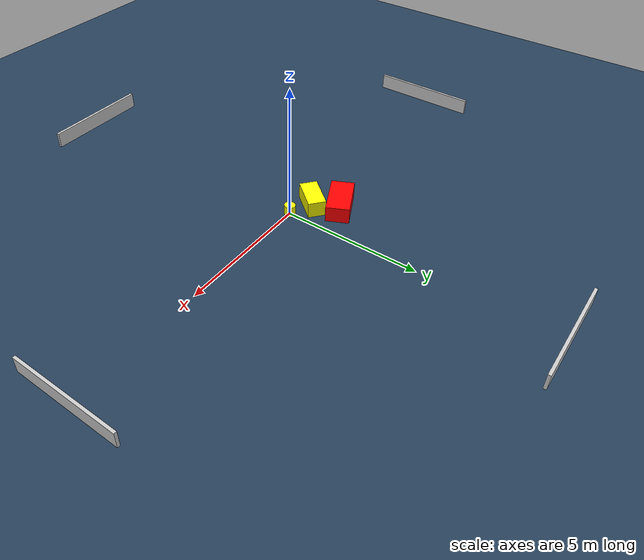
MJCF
<?xml version="1.0" ?>
<mujoco model="generated_environment">
  <option timestep="0.01" integrator="RK4" cone="elliptic"/>
  <default>
    <geom density="1"/>
  </default>
  <asset>
    <texture builtin="gradient" height="3072" name="skybox" rgb1="0.3 0.5 0.7" rgb2="0 0 0" type="skybox" width="512"/>
    <texture builtin="checker" height="300" name="groundplane" rgb1="0.2 0.3 0.4" rgb2="0.1 0.2 0.3" type="2d" width="300"/>
    <material name="groundplane" reflectance="0.2" texrepeat="5 5" texture="groundplane"/>
  </asset>
  <worldbody>
    <light dir="0 0 -1" directional="true" pos="0 0 1.5"/>
    <geom condim="3" friction="0.5 0.005 0.001" material="groundplane" name="floor" pos="0 0 0" size="0 0 0.05" type="plane"/>
    <body name="walls">
      <geom name="wall_1" condim="4" pos="-10.0 0.0 0.3" rgba="0.800000011920929 0.800000011920929 0.800000011920929 1.0" size="0.05 2.0 0.3" type="box"/>
      <geom name="wall_2" condim="4" pos="10.0 0.0 0.3" rgba="0.800000011920929 0.800000011920929 0.800000011920929 1.0" size="0.05 2.0 0.3" type="box"/>
      <geom name="wall_3" condim="4" pos="0.0 -10.0 0.3" rgba="0.800000011920929 0.800000011920929 0.800000011920929 1.0" size="2.0 0.05 0.3" type="box"/>
      <geom name="wall_4" condim="4" pos="0.0 10.0 0.3" rgba="0.800000011920929 0.800000011920929 0.800000011920929 1.0" size="2.0 0.05 0.3" type="box"/>
    </body>
    <body name="robot">
      <joint name="joint_x" type="slide" pos="0 0 0" axis="1 0 0"/>
      <joint name="joint_y" type="slide" pos="0 0 0" axis="0 1 0"/>
      <geom name="robot" type="cylinder" pos="0.0 0.0 0.2" size="0.2 0.2 0.0" mass="5.0" friction="1.0 0.005 0.0001" condim="4" rgba="1.0 1.0 0.0 1.0"/>
    </body>
    <body name="obstacle_1_movable">
      <geom name="obstacle_1_movable" condim="4" pos="-0.8448019623839114 0.38106596482569205 0.3" euler="0 0 50.188787349950495" friction="0.0 0.005 0.001" rgba="1.0 1.0 0.0 1.0" size="0.6180342427106147 0.324413821851544 0.3" type="box" mass="0.1"/>
      <joint type="free"/>
    </body>
    <body name="obstacle_2_static">
      <geom name="obstacle_2_static" condim="4" pos="-1.3063195152841143 1.2546287260529077 0.3" euler="0 0 295.8582673217358" friction="0.0 0.005 0.001" rgba="1.0 0.0 0.0 1.0" size="0.4217423743832426 0.7950260299761849 0.3" type="box"/>
    </body>
  </worldbody>
  <actuator>
    <motor name="actuator_x" joint="joint_x" gear="1" ctrlrange="-1 1"/>
    <motor name="actuator_y" joint="joint_y" gear="1" ctrlrange="-1 1"/>
  </actuator>
</mujoco>
